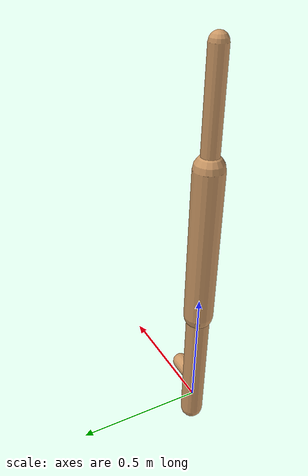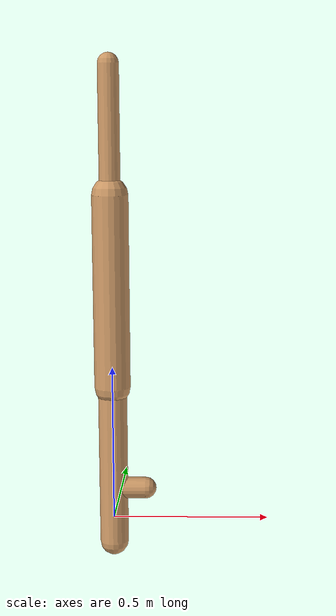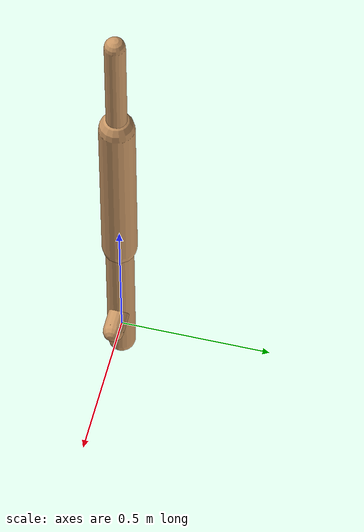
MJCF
<mujoco model="walker2d">
  <compiler angle="degree" coordinate="global" inertiafromgeom="true" />
  <default>
    <joint armature="0.01" damping=".1" limited="true" />
    <geom conaffinity="0" condim="3" contype="1" density="1000" friction="0.8 .1 .1" rgba="0.8 0.6 .4 1" />
  </default>
  <option integrator="RK4" timestep="0.002" />
  <worldbody>

    <body name="torso" pos="0 0 0.3435241653825367">
      <joint armature="0" axis="1 0 0" damping="0" limited="false" name="ignorex" pos="0 0 0" stiffness="0" type="slide" />
      <joint armature="0" axis="0 0 1" damping="0" limited="false" name="ignorez" pos="0 0 0" ref="1.25" stiffness="0" type="slide" />
      <joint armature="0" axis="0 1 0" damping="0" limited="false" name="ignorey" pos="0 0 0" stiffness="0" type="hinge" />
      <geom fromto="0 0 1.45 0 0 1.05" name="torso_geom" size="0.033204427471130615" type="capsule" />
      <body name="thigh">
        <joint axis="0 -1 0" name="thigh_joint" pos="0 0 1.05" range="-150 0" type="hinge" />
        <geom fromto="0.0 0.0 1.05 0.0 0.0 0.43727802692406154" name="thigh_geom" size="0.05766640630790082" type="capsule" />
        <body name="leg" pos="0.0 0.0 -0.16272197307593844">
          <joint axis="0 -1 0" name="leg_joint" pos="0 0 0.6" range="-150 0" type="hinge" />
          <geom fromto="0.0 0.0 0.6 0.0 0.0 -0.08080219230659824" name="leg_geom" size="0.04613312504632066" type="capsule" />
          <body name="foot" pos="0.0 0.0 -0.18080219230659825">
            <joint axis="0 -1 0" name="foot_joint" pos="0 0 0.1" range="-45 45" type="hinge" />
            <geom fromto="0.0 0.0 0.1 0.10402138601767881 0.0 0.1" name="foot_geom" size="0.03462724304035234" type="capsule" />
          </body>
        </body>
      </body>

      <body name="thigh_left">
        <joint axis="0 -1 0" name="thigh_left_joint" pos="0 0 1.05" range="-150 0" type="hinge" />
        <geom fromto="0.0 0.0 1.05 0.0 0.0 0.43727802692406154" name="thigh_left_geom" rgba=".7 .3 .6 1" size="0.05766640630790082" type="capsule" />
        <body name="leg_left" pos="0.0 0.0 -0.16272197307593844">
          <joint axis="0 -1 0" name="leg_left_joint" pos="0 0 0.6" range="-150 0" type="hinge" />
          <geom fromto="0.0 0.0 0.6 0.0 0.0 -0.08080219230659824" name="leg_left_geom" rgba=".7 .3 .6 1" size="0.04613312504632066" type="capsule" />
          <body name="foot_left" pos="0.0 0.0 -0.18080219230659825">
            <joint axis="0 -1 0" name="foot_left_joint" pos="0 0 0.1" range="-45 45" type="hinge" />
            <geom fromto="0.0 0.0 0.1 0.10402138601767881 0.0 0.1" name="foot_left_geom" rgba=".7 .3 .6 1" size="0.03462724304035234" type="capsule" />
          </body>
        </body>
      </body>
    </body>
  </worldbody>
  <actuator>

    <motor ctrllimited="true" ctrlrange="-1.0 1.0" gear="100" joint="thigh_joint" />
    <motor ctrllimited="true" ctrlrange="-1.0 1.0" gear="100" joint="leg_joint" />
    <motor ctrllimited="true" ctrlrange="-1.0 1.0" gear="100" joint="foot_joint" />
    <motor ctrllimited="true" ctrlrange="-1.0 1.0" gear="100" joint="thigh_left_joint" />
    <motor ctrllimited="true" ctrlrange="-1.0 1.0" gear="100" joint="leg_left_joint" />
    <motor ctrllimited="true" ctrlrange="-1.0 1.0" gear="100" joint="foot_left_joint" />

  </actuator>
</mujoco>
